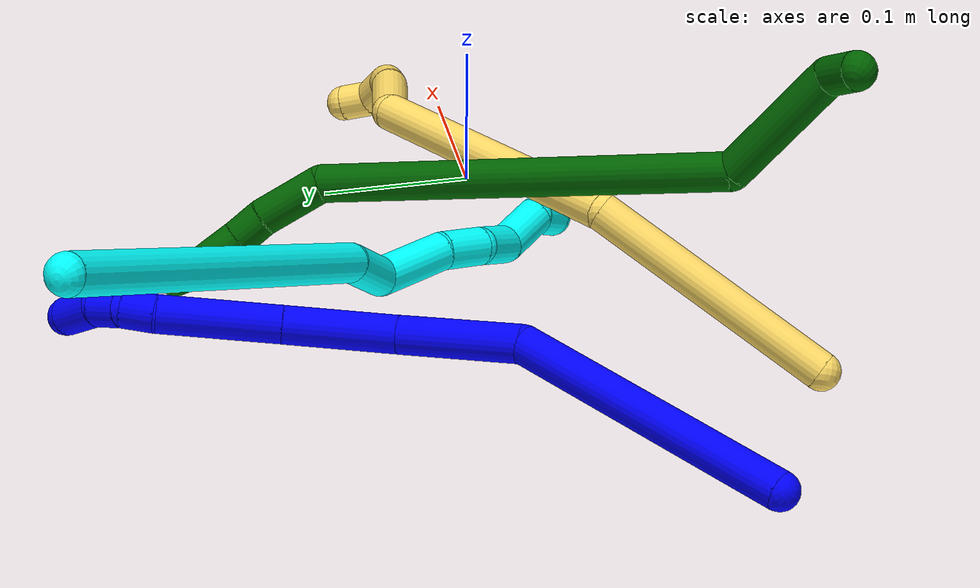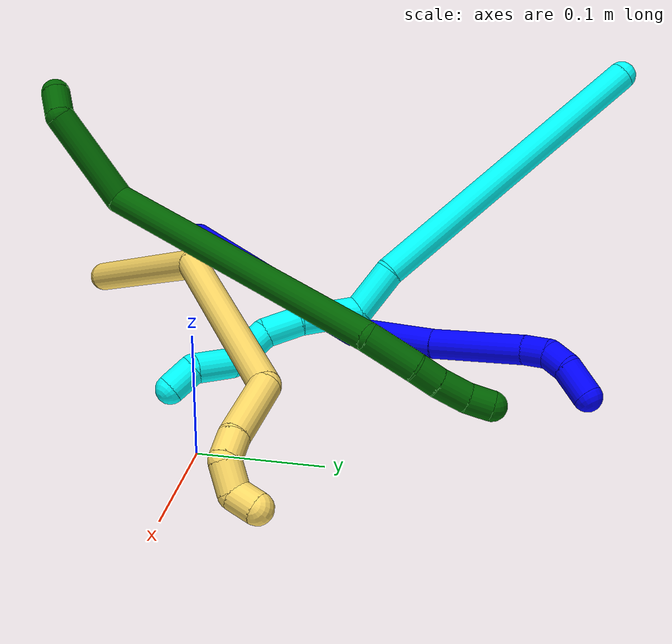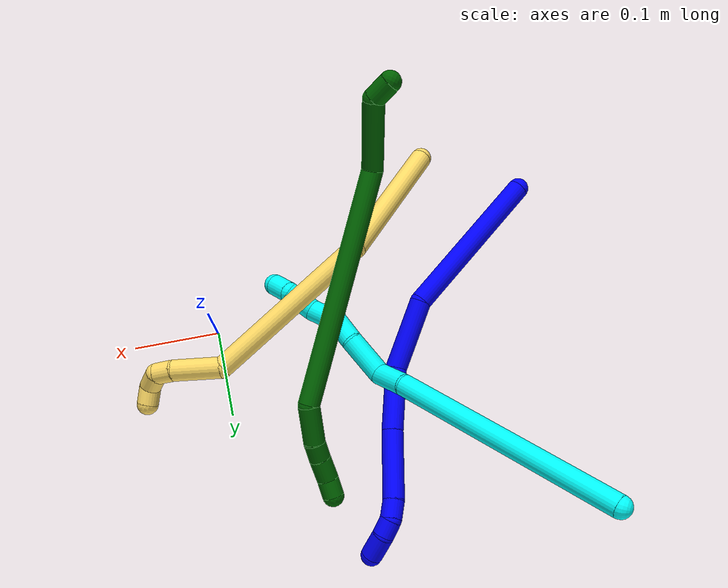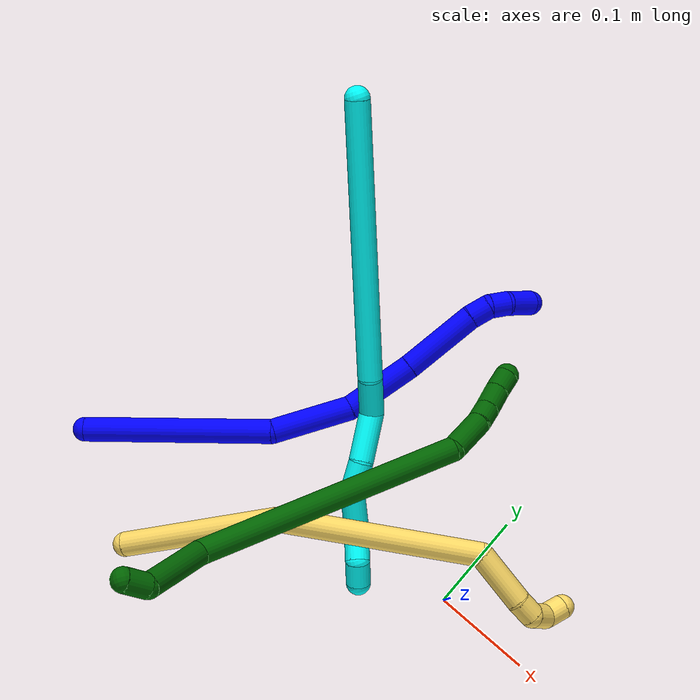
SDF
<sdf version="1.7">
 <world name="default">
  <model name="1">
   <static>0</static>
   <link name="1">
    <collision name="collision-cylinder-e_1_1_4">
     <pose>0.008089 0.071537 0.062962 -0.849069 0.084673 -0.038292</pose>
     <geometry><cylinder><radius>0.0125</radius><length>0.191282</length></cylinder></geometry>
     <surface>
      <friction><ode><mu>1.16</mu><mu2>1.16</mu2><slip1>0</slip1><slip2>0</slip2></ode></friction>
      <contact><ode><kp>1e+06</kp><kd>1</kd><max_vel>0</max_vel><min_depth>0.001</min_depth></ode></contact>
     </surface>
    </collision>
    <visual name="visual-cylinder-e_1_1_4">
     <pose>0.008089 0.071537 0.062962 -0.849069 0.084673 -0.038292</pose>
     <geometry><cylinder><radius>0.0125</radius><length>0.191282</length></cylinder></geometry>
     <material><ambient>0 0 1 1</ambient></material>
    </visual>
    <collision name="collision-cylinder-e_2_4_5">
     <pose>0.030526 0.162402 0.160155 -0.513984 0.349993 -0.092863</pose>
     <geometry><cylinder><radius>0.0125</radius><length>0.083695</length></cylinder></geometry>
     <surface>
      <friction><ode><mu>1.16</mu><mu2>1.16</mu2><slip1>0</slip1><slip2>0</slip2></ode></friction>
      <contact><ode><kp>1e+06</kp><kd>1</kd><max_vel>0</max_vel><min_depth>0.001</min_depth></ode></contact>
     </surface>
    </collision>
    <visual name="visual-cylinder-e_2_4_5">
     <pose>0.030526 0.162402 0.160155 -0.513984 0.349993 -0.092863</pose>
     <geometry><cylinder><radius>0.0125</radius><length>0.083695</length></cylinder></geometry>
     <material><ambient>0 0 1 1</ambient></material>
    </visual>
    <collision name="collision-cylinder-e_3_5_6">
     <pose>0.068295 0.199394 0.21668 -0.67009 0.68881 -0.248492</pose>
     <geometry><cylinder><radius>0.0125</radius><length>0.07369</length></cylinder></geometry>
     <surface>
      <friction><ode><mu>1.16</mu><mu2>1.16</mu2><slip1>0</slip1><slip2>0</slip2></ode></friction>
      <contact><ode><kp>1e+06</kp><kd>1</kd><max_vel>0</max_vel><min_depth>0.001</min_depth></ode></contact>
     </surface>
    </collision>
    <visual name="visual-cylinder-e_3_5_6">
     <pose>0.068295 0.199394 0.21668 -0.67009 0.68881 -0.248492</pose>
     <geometry><cylinder><radius>0.0125</radius><length>0.07369</length></cylinder></geometry>
     <material><ambient>0 0 1 1</ambient></material>
    </visual>
    <collision name="collision-cylinder-e_4_6_7">
     <pose>0.119433 0.235819 0.26062 -0.714079 0.768999 -0.299621</pose>
     <geometry><cylinder><radius>0.0125</radius><length>0.079719</length></cylinder></geometry>
     <surface>
      <friction><ode><mu>1.16</mu><mu2>1.16</mu2><slip1>0</slip1><slip2>0</slip2></ode></friction>
      <contact><ode><kp>1e+06</kp><kd>1</kd><max_vel>0</max_vel><min_depth>0.001</min_depth></ode></contact>
     </surface>
    </collision>
    <visual name="visual-cylinder-e_4_6_7">
     <pose>0.119433 0.235819 0.26062 -0.714079 0.768999 -0.299621</pose>
     <geometry><cylinder><radius>0.0125</radius><length>0.079719</length></cylinder></geometry>
     <material><ambient>0 0 1 1</ambient></material>
    </visual>
    <collision name="collision-cylinder-e_5_7_8">
     <pose>0.1534 0.260559 0.288981 -0.727609 0.60721 -0.23745</pose>
     <geometry><cylinder><radius>0.0125</radius><length>0.0219</length></cylinder></geometry>
     <surface>
      <friction><ode><mu>1.16</mu><mu2>1.16</mu2><slip1>0</slip1><slip2>0</slip2></ode></friction>
      <contact><ode><kp>1e+06</kp><kd>1</kd><max_vel>0</max_vel><min_depth>0.001</min_depth></ode></contact>
     </surface>
    </collision>
    <visual name="visual-cylinder-e_5_7_8">
     <pose>0.1534 0.260559 0.288981 -0.727609 0.60721 -0.23745</pose>
     <geometry><cylinder><radius>0.0125</radius><length>0.0219</length></cylinder></geometry>
     <material><ambient>0 0 1 1</ambient></material>
    </visual>
    <collision name="collision-cylinder-e_6_8_9">
     <pose>0.161916 0.270766 0.3046 -0.443152 0.226223 -0.05117</pose>
     <geometry><cylinder><radius>0.0125</radius><length>0.020228</length></cylinder></geometry>
     <surface>
      <friction><ode><mu>1.16</mu><mu2>1.16</mu2><slip1>0</slip1><slip2>0</slip2></ode></friction>
      <contact><ode><kp>1e+06</kp><kd>1</kd><max_vel>0</max_vel><min_depth>0.001</min_depth></ode></contact>
     </surface>
    </collision>
    <visual name="visual-cylinder-e_6_8_9">
     <pose>0.161916 0.270766 0.3046 -0.443152 0.226223 -0.05117</pose>
     <geometry><cylinder><radius>0.0125</radius><length>0.020228</length></cylinder></geometry>
     <material><ambient>0 0 1 1</ambient></material>
    </visual>
    <collision name="collision-cylinder-e_7_9_2">
     <pose>0.165082 0.277436 0.328016 -0.166894 0.060954 -0.0051</pose>
     <geometry><cylinder><radius>0.0125</radius><length>0.029487</length></cylinder></geometry>
     <surface>
      <friction><ode><mu>1.16</mu><mu2>1.16</mu2><slip1>0</slip1><slip2>0</slip2></ode></friction>
      <contact><ode><kp>1e+06</kp><kd>1</kd><max_vel>0</max_vel><min_depth>0.001</min_depth></ode></contact>
     </surface>
    </collision>
    <visual name="visual-cylinder-e_7_9_2">
     <pose>0.165082 0.277436 0.328016 -0.166894 0.060954 -0.0051</pose>
     <geometry><cylinder><radius>0.0125</radius><length>0.029487</length></cylinder></geometry>
     <material><ambient>0 0 1 1</ambient></material>
    </visual>
    <collision name="collision-sphere-2">
     <pose>0.165981 0.279881 0.342527 0 -0 0</pose>
     <geometry><sphere><radius>0.0125</radius></sphere></geometry>
     <surface>
      <friction><ode><mu>1.16</mu><mu2>1.16</mu2><slip1>0</slip1><slip2>0</slip2></ode></friction>
      <contact><ode><kp>1e+06</kp><kd>1</kd><max_vel>0</max_vel><min_depth>0.001</min_depth></ode></contact>
     </surface>
    </collision>
    <visual name="visual-sphere-2">
     <pose>0.165981 0.279881 0.342527 0 -0 0</pose>
     <geometry><sphere><radius>0.0125</radius></sphere></geometry>
     <material><ambient>0 0 1 1</ambient></material>
    </visual>
    <collision name="collision-sphere-9">
     <pose>0.164184 0.274992 0.313504 0 -0 0</pose>
     <geometry><sphere><radius>0.0125</radius></sphere></geometry>
     <surface>
      <friction><ode><mu>1.16</mu><mu2>1.16</mu2><slip1>0</slip1><slip2>0</slip2></ode></friction>
      <contact><ode><kp>1e+06</kp><kd>1</kd><max_vel>0</max_vel><min_depth>0.001</min_depth></ode></contact>
     </surface>
    </collision>
    <visual name="visual-sphere-9">
     <pose>0.164184 0.274992 0.313504 0 -0 0</pose>
     <geometry><sphere><radius>0.0125</radius></sphere></geometry>
     <material><ambient>0 0 1 1</ambient></material>
    </visual>
    <collision name="collision-sphere-4">
     <pose>0.016177 0.143074 0.125924 0 -0 0</pose>
     <geometry><sphere><radius>0.0125</radius></sphere></geometry>
     <surface>
      <friction><ode><mu>1.16</mu><mu2>1.16</mu2><slip1>0</slip1><slip2>0</slip2></ode></friction>
      <contact><ode><kp>1e+06</kp><kd>1</kd><max_vel>0</max_vel><min_depth>0.001</min_depth></ode></contact>
     </surface>
    </collision>
    <visual name="visual-sphere-4">
     <pose>0.016177 0.143074 0.125924 0 -0 0</pose>
     <geometry><sphere><radius>0.0125</radius></sphere></geometry>
     <material><ambient>0 0 1 1</ambient></material>
    </visual>
    <collision name="collision-sphere-1">
     <geometry><sphere><radius>0.0125</radius></sphere></geometry>
     <surface>
      <friction><ode><mu>1.16</mu><mu2>1.16</mu2><slip1>0</slip1><slip2>0</slip2></ode></friction>
      <contact><ode><kp>1e+06</kp><kd>1</kd><max_vel>0</max_vel><min_depth>0.001</min_depth></ode></contact>
     </surface>
    </collision>
    <visual name="visual-sphere-1">
     <geometry><sphere><radius>0.0125</radius></sphere></geometry>
     <material><ambient>0 0 1 1</ambient></material>
    </visual>
    <collision name="collision-sphere-8">
     <pose>0.159647 0.266539 0.295696 0 -0 0</pose>
     <geometry><sphere><radius>0.0125</radius></sphere></geometry>
     <surface>
      <friction><ode><mu>1.16</mu><mu2>1.16</mu2><slip1>0</slip1><slip2>0</slip2></ode></friction>
      <contact><ode><kp>1e+06</kp><kd>1</kd><max_vel>0</max_vel><min_depth>0.001</min_depth></ode></contact>
     </surface>
    </collision>
    <visual name="visual-sphere-8">
     <pose>0.159647 0.266539 0.295696 0 -0 0</pose>
     <geometry><sphere><radius>0.0125</radius></sphere></geometry>
     <material><ambient>0 0 1 1</ambient></material>
    </visual>
    <collision name="collision-sphere-5">
     <pose>0.044876 0.181729 0.194387 0 -0 0</pose>
     <geometry><sphere><radius>0.0125</radius></sphere></geometry>
     <surface>
      <friction><ode><mu>1.16</mu><mu2>1.16</mu2><slip1>0</slip1><slip2>0</slip2></ode></friction>
      <contact><ode><kp>1e+06</kp><kd>1</kd><max_vel>0</max_vel><min_depth>0.001</min_depth></ode></contact>
     </surface>
    </collision>
    <visual name="visual-sphere-5">
     <pose>0.044876 0.181729 0.194387 0 -0 0</pose>
     <geometry><sphere><radius>0.0125</radius></sphere></geometry>
     <material><ambient>0 0 1 1</ambient></material>
    </visual>
    <collision name="collision-sphere-6">
     <pose>0.091714 0.21706 0.238974 0 -0 0</pose>
     <geometry><sphere><radius>0.0125</radius></sphere></geometry>
     <surface>
      <friction><ode><mu>1.16</mu><mu2>1.16</mu2><slip1>0</slip1><slip2>0</slip2></ode></friction>
      <contact><ode><kp>1e+06</kp><kd>1</kd><max_vel>0</max_vel><min_depth>0.001</min_depth></ode></contact>
     </surface>
    </collision>
    <visual name="visual-sphere-6">
     <pose>0.091714 0.21706 0.238974 0 -0 0</pose>
     <geometry><sphere><radius>0.0125</radius></sphere></geometry>
     <material><ambient>0 0 1 1</ambient></material>
    </visual>
    <collision name="collision-sphere-7">
     <pose>0.147152 0.254578 0.282265 0 -0 0</pose>
     <geometry><sphere><radius>0.0125</radius></sphere></geometry>
     <surface>
      <friction><ode><mu>1.16</mu><mu2>1.16</mu2><slip1>0</slip1><slip2>0</slip2></ode></friction>
      <contact><ode><kp>1e+06</kp><kd>1</kd><max_vel>0</max_vel><min_depth>0.001</min_depth></ode></contact>
     </surface>
    </collision>
    <visual name="visual-sphere-7">
     <pose>0.147152 0.254578 0.282265 0 -0 0</pose>
     <geometry><sphere><radius>0.0125</radius></sphere></geometry>
     <material><ambient>0 0 1 1</ambient></material>
    </visual>
    <inertial>
     <pose>0.060316 0.160265 0.168706 0 -0 0</pose>
     <mass>0.5</mass>
     <inertia>
      <ixx>0.00067</ixx>
      <ixy>0</ixy>
      <ixz>0</ixz>
      <iyy>0.000491</iyy>
      <iyz>0</iyz>
      <izz>-0.000604</izz>
     </inertia>
    </inertial>
   </link>
   <pose>-0.388241 -0.106648 0.012294 2.34089 -0.220796 2.19236</pose>
  </model>
  <model name="3">
   <static>0</static>
   <link name="3">
    <collision name="collision-cylinder-e_1_1_4">
     <pose>0.014073 -0.039694 -0.132523 2.85057 0.101377 0.666541</pose>
     <geometry><cylinder><radius>0.0125</radius><length>0.278109</length></cylinder></geometry>
     <surface>
      <friction><ode><mu>1.16</mu><mu2>1.16</mu2><slip1>0</slip1><slip2>0</slip2></ode></friction>
      <contact><ode><kp>1e+06</kp><kd>1</kd><max_vel>0</max_vel><min_depth>0.001</min_depth></ode></contact>
     </surface>
    </collision>
    <visual name="visual-cylinder-e_1_1_4">
     <pose>0.014073 -0.039694 -0.132523 2.85057 0.101377 0.666541</pose>
     <geometry><cylinder><radius>0.0125</radius><length>0.278109</length></cylinder></geometry>
     <material><ambient>0.003922 1 0.996078 1</ambient></material>
    </visual>
    <collision name="collision-cylinder-e_2_4_5">
     <pose>0.026591 -0.088929 -0.283732 2.66953 -0.073979 -0.305332</pose>
     <geometry><cylinder><radius>0.0125</radius><length>0.042075</length></cylinder></geometry>
     <surface>
      <friction><ode><mu>1.16</mu><mu2>1.16</mu2><slip1>0</slip1><slip2>0</slip2></ode></friction>
      <contact><ode><kp>1e+06</kp><kd>1</kd><max_vel>0</max_vel><min_depth>0.001</min_depth></ode></contact>
     </surface>
    </collision>
    <visual name="visual-cylinder-e_2_4_5">
     <pose>0.026591 -0.088929 -0.283732 2.66953 -0.073979 -0.305332</pose>
     <geometry><cylinder><radius>0.0125</radius><length>0.042075</length></cylinder></geometry>
     <material><ambient>0.003922 1 0.996078 1</ambient></material>
    </visual>
    <collision name="collision-cylinder-e_3_5_6">
     <pose>0.039251 -0.101252 -0.32297 3.00697 0.600848 2.71308</pose>
     <geometry><cylinder><radius>0.0125</radius><length>0.050287</length></cylinder></geometry>
     <surface>
      <friction><ode><mu>1.16</mu><mu2>1.16</mu2><slip1>0</slip1><slip2>0</slip2></ode></friction>
      <contact><ode><kp>1e+06</kp><kd>1</kd><max_vel>0</max_vel><min_depth>0.001</min_depth></ode></contact>
     </surface>
    </collision>
    <visual name="visual-cylinder-e_3_5_6">
     <pose>0.039251 -0.101252 -0.32297 3.00697 0.600848 2.71308</pose>
     <geometry><cylinder><radius>0.0125</radius><length>0.050287</length></cylinder></geometry>
     <material><ambient>0.003922 1 0.996078 1</ambient></material>
    </visual>
    <collision name="collision-cylinder-e_4_6_7">
     <pose>0.060805 -0.109079 -0.356427 2.76909 0.487167 1.8441</pose>
     <geometry><cylinder><radius>0.0125</radius><length>0.031359</length></cylinder></geometry>
     <surface>
      <friction><ode><mu>1.16</mu><mu2>1.16</mu2><slip1>0</slip1><slip2>0</slip2></ode></friction>
      <contact><ode><kp>1e+06</kp><kd>1</kd><max_vel>0</max_vel><min_depth>0.001</min_depth></ode></contact>
     </surface>
    </collision>
    <visual name="visual-cylinder-e_4_6_7">
     <pose>0.060805 -0.109079 -0.356427 2.76909 0.487167 1.8441</pose>
     <geometry><cylinder><radius>0.0125</radius><length>0.031359</length></cylinder></geometry>
     <material><ambient>0.003922 1 0.996078 1</ambient></material>
    </visual>
    <collision name="collision-cylinder-e_5_7_8">
     <pose>0.069212 -0.11887 -0.387629 2.88764 0.056347 0.434516</pose>
     <geometry><cylinder><radius>0.0125</radius><length>0.037866</length></cylinder></geometry>
     <surface>
      <friction><ode><mu>1.16</mu><mu2>1.16</mu2><slip1>0</slip1><slip2>0</slip2></ode></friction>
      <contact><ode><kp>1e+06</kp><kd>1</kd><max_vel>0</max_vel><min_depth>0.001</min_depth></ode></contact>
     </surface>
    </collision>
    <visual name="visual-cylinder-e_5_7_8">
     <pose>0.069212 -0.11887 -0.387629 2.88764 0.056347 0.434516</pose>
     <geometry><cylinder><radius>0.0125</radius><length>0.037866</length></cylinder></geometry>
     <material><ambient>0.003922 1 0.996078 1</ambient></material>
    </visual>
    <collision name="collision-cylinder-e_6_8_9">
     <pose>0.078829 -0.120765 -0.421247 -2.95741 0.501851 -2.44997</pose>
     <geometry><cylinder><radius>0.0125</radius><length>0.035553</length></cylinder></geometry>
     <surface>
      <friction><ode><mu>1.16</mu><mu2>1.16</mu2><slip1>0</slip1><slip2>0</slip2></ode></friction>
      <contact><ode><kp>1e+06</kp><kd>1</kd><max_vel>0</max_vel><min_depth>0.001</min_depth></ode></contact>
     </surface>
    </collision>
    <visual name="visual-cylinder-e_6_8_9">
     <pose>0.078829 -0.120765 -0.421247 -2.95741 0.501851 -2.44997</pose>
     <geometry><cylinder><radius>0.0125</radius><length>0.035553</length></cylinder></geometry>
     <material><ambient>0.003922 1 0.996078 1</ambient></material>
    </visual>
    <collision name="collision-cylinder-e_7_9_2">
     <pose>0.088291 -0.121989 -0.448217 2.80483 0.073635 0.426766</pose>
     <geometry><cylinder><radius>0.0125</radius><length>0.02475</length></cylinder></geometry>
     <surface>
      <friction><ode><mu>1.16</mu><mu2>1.16</mu2><slip1>0</slip1><slip2>0</slip2></ode></friction>
      <contact><ode><kp>1e+06</kp><kd>1</kd><max_vel>0</max_vel><min_depth>0.001</min_depth></ode></contact>
     </surface>
    </collision>
    <visual name="visual-cylinder-e_7_9_2">
     <pose>0.088291 -0.121989 -0.448217 2.80483 0.073635 0.426766</pose>
     <geometry><cylinder><radius>0.0125</radius><length>0.02475</length></cylinder></geometry>
     <material><ambient>0.003922 1 0.996078 1</ambient></material>
    </visual>
    <collision name="collision-sphere-2">
     <pose>0.089202 -0.126067 -0.459865 0 -0 0</pose>
     <geometry><sphere><radius>0.0125</radius></sphere></geometry>
     <surface>
      <friction><ode><mu>1.16</mu><mu2>1.16</mu2><slip1>0</slip1><slip2>0</slip2></ode></friction>
      <contact><ode><kp>1e+06</kp><kd>1</kd><max_vel>0</max_vel><min_depth>0.001</min_depth></ode></contact>
     </surface>
    </collision>
    <visual name="visual-sphere-2">
     <pose>0.089202 -0.126067 -0.459865 0 -0 0</pose>
     <geometry><sphere><radius>0.0125</radius></sphere></geometry>
     <material><ambient>0.003922 1 0.996078 1</ambient></material>
    </visual>
    <collision name="collision-sphere-9">
     <pose>0.087381 -0.117911 -0.436568 0 -0 0</pose>
     <geometry><sphere><radius>0.0125</radius></sphere></geometry>
     <surface>
      <friction><ode><mu>1.16</mu><mu2>1.16</mu2><slip1>0</slip1><slip2>0</slip2></ode></friction>
      <contact><ode><kp>1e+06</kp><kd>1</kd><max_vel>0</max_vel><min_depth>0.001</min_depth></ode></contact>
     </surface>
    </collision>
    <visual name="visual-sphere-9">
     <pose>0.087381 -0.117911 -0.436568 0 -0 0</pose>
     <geometry><sphere><radius>0.0125</radius></sphere></geometry>
     <material><ambient>0.003922 1 0.996078 1</ambient></material>
    </visual>
    <collision name="collision-sphere-4">
     <pose>0.028146 -0.079389 -0.265047 0 -0 0</pose>
     <geometry><sphere><radius>0.0125</radius></sphere></geometry>
     <surface>
      <friction><ode><mu>1.16</mu><mu2>1.16</mu2><slip1>0</slip1><slip2>0</slip2></ode></friction>
      <contact><ode><kp>1e+06</kp><kd>1</kd><max_vel>0</max_vel><min_depth>0.001</min_depth></ode></contact>
     </surface>
    </collision>
    <visual name="visual-sphere-4">
     <pose>0.028146 -0.079389 -0.265047 0 -0 0</pose>
     <geometry><sphere><radius>0.0125</radius></sphere></geometry>
     <material><ambient>0.003922 1 0.996078 1</ambient></material>
    </visual>
    <collision name="collision-sphere-1">
     <geometry><sphere><radius>0.0125</radius></sphere></geometry>
     <surface>
      <friction><ode><mu>1.16</mu><mu2>1.16</mu2><slip1>0</slip1><slip2>0</slip2></ode></friction>
      <contact><ode><kp>1e+06</kp><kd>1</kd><max_vel>0</max_vel><min_depth>0.001</min_depth></ode></contact>
     </surface>
    </collision>
    <visual name="visual-sphere-1">
     <geometry><sphere><radius>0.0125</radius></sphere></geometry>
     <material><ambient>0.003922 1 0.996078 1</ambient></material>
    </visual>
    <collision name="collision-sphere-8">
     <pose>0.070278 -0.123619 -0.405926 0 -0 0</pose>
     <geometry><sphere><radius>0.0125</radius></sphere></geometry>
     <surface>
      <friction><ode><mu>1.16</mu><mu2>1.16</mu2><slip1>0</slip1><slip2>0</slip2></ode></friction>
      <contact><ode><kp>1e+06</kp><kd>1</kd><max_vel>0</max_vel><min_depth>0.001</min_depth></ode></contact>
     </surface>
    </collision>
    <visual name="visual-sphere-8">
     <pose>0.070278 -0.123619 -0.405926 0 -0 0</pose>
     <geometry><sphere><radius>0.0125</radius></sphere></geometry>
     <material><ambient>0.003922 1 0.996078 1</ambient></material>
    </visual>
    <collision name="collision-sphere-5">
     <pose>0.025036 -0.098469 -0.302417 0 -0 0</pose>
     <geometry><sphere><radius>0.0125</radius></sphere></geometry>
     <surface>
      <friction><ode><mu>1.16</mu><mu2>1.16</mu2><slip1>0</slip1><slip2>0</slip2></ode></friction>
      <contact><ode><kp>1e+06</kp><kd>1</kd><max_vel>0</max_vel><min_depth>0.001</min_depth></ode></contact>
     </surface>
    </collision>
    <visual name="visual-sphere-5">
     <pose>0.025036 -0.098469 -0.302417 0 -0 0</pose>
     <geometry><sphere><radius>0.0125</radius></sphere></geometry>
     <material><ambient>0.003922 1 0.996078 1</ambient></material>
    </visual>
    <collision name="collision-sphere-6">
     <pose>0.053465 -0.104036 -0.343522 0 -0 0</pose>
     <geometry><sphere><radius>0.0125</radius></sphere></geometry>
     <surface>
      <friction><ode><mu>1.16</mu><mu2>1.16</mu2><slip1>0</slip1><slip2>0</slip2></ode></friction>
      <contact><ode><kp>1e+06</kp><kd>1</kd><max_vel>0</max_vel><min_depth>0.001</min_depth></ode></contact>
     </surface>
    </collision>
    <visual name="visual-sphere-6">
     <pose>0.053465 -0.104036 -0.343522 0 -0 0</pose>
     <geometry><sphere><radius>0.0125</radius></sphere></geometry>
     <material><ambient>0.003922 1 0.996078 1</ambient></material>
    </visual>
    <collision name="collision-sphere-7">
     <pose>0.068145 -0.114121 -0.369333 0 -0 0</pose>
     <geometry><sphere><radius>0.0125</radius></sphere></geometry>
     <surface>
      <friction><ode><mu>1.16</mu><mu2>1.16</mu2><slip1>0</slip1><slip2>0</slip2></ode></friction>
      <contact><ode><kp>1e+06</kp><kd>1</kd><max_vel>0</max_vel><min_depth>0.001</min_depth></ode></contact>
     </surface>
    </collision>
    <visual name="visual-sphere-7">
     <pose>0.068145 -0.114121 -0.369333 0 -0 0</pose>
     <geometry><sphere><radius>0.0125</radius></sphere></geometry>
     <material><ambient>0.003922 1 0.996078 1</ambient></material>
    </visual>
    <inertial>
     <pose>0.033044 -0.070215 -0.233921 0 -0 0</pose>
     <mass>0.5</mass>
     <inertia>
      <ixx>0.002533</ixx>
      <ixy>0</ixy>
      <ixz>0</ixz>
      <iyy>-0.000217</iyy>
      <iyz>0</iyz>
      <izz>0.000293</izz>
     </inertia>
    </inertial>
   </link>
   <pose>-0.36915 0.290698 0.206758 1.1845 -0.573322 -1.87226</pose>
  </model>
  <model name="5">
   <static>0</static>
   <link name="5">
    <collision name="collision-cylinder-e_1_1_4">
     <pose>0.032838 0.065276 0.043895 -0.978795 0.395464 -0.212614</pose>
     <geometry><cylinder><radius>0.0125</radius><length>0.170482</length></cylinder></geometry>
     <surface>
      <friction><ode><mu>1.16</mu><mu2>1.16</mu2><slip1>0</slip1><slip2>0</slip2></ode></friction>
      <contact><ode><kp>1e+06</kp><kd>1</kd><max_vel>0</max_vel><min_depth>0.001</min_depth></ode></contact>
     </surface>
    </collision>
    <visual name="visual-cylinder-e_1_1_4">
     <pose>0.032838 0.065276 0.043895 -0.978795 0.395464 -0.212614</pose>
     <geometry><cylinder><radius>0.0125</radius><length>0.170482</length></cylinder></geometry>
     <material><ambient>1 0.858824 0.4 1</ambient></material>
    </visual>
    <collision name="collision-cylinder-e_2_4_5">
     <pose>0.148132 0.173809 0.128266 -0.818616 0.94779 -0.437848</pose>
     <geometry><cylinder><radius>0.0125</radius><length>0.203061</length></cylinder></geometry>
     <surface>
      <friction><ode><mu>1.16</mu><mu2>1.16</mu2><slip1>0</slip1><slip2>0</slip2></ode></friction>
      <contact><ode><kp>1e+06</kp><kd>1</kd><max_vel>0</max_vel><min_depth>0.001</min_depth></ode></contact>
     </surface>
    </collision>
    <visual name="visual-cylinder-e_2_4_5">
     <pose>0.148132 0.173809 0.128266 -0.818616 0.94779 -0.437848</pose>
     <geometry><cylinder><radius>0.0125</radius><length>0.203061</length></cylinder></geometry>
     <material><ambient>1 0.858824 0.4 1</ambient></material>
    </visual>
    <collision name="collision-cylinder-e_3_5_6">
     <pose>0.254144 0.209272 0.184829 0.451224 0.921632 0.226918</pose>
     <geometry><cylinder><radius>0.0125</radius><length>0.059144</length></cylinder></geometry>
     <surface>
      <friction><ode><mu>1.16</mu><mu2>1.16</mu2><slip1>0</slip1><slip2>0</slip2></ode></friction>
      <contact><ode><kp>1e+06</kp><kd>1</kd><max_vel>0</max_vel><min_depth>0.001</min_depth></ode></contact>
     </surface>
    </collision>
    <visual name="visual-cylinder-e_3_5_6">
     <pose>0.254144 0.209272 0.184829 0.451224 0.921632 0.226918</pose>
     <geometry><cylinder><radius>0.0125</radius><length>0.059144</length></cylinder></geometry>
     <material><ambient>1 0.858824 0.4 1</ambient></material>
    </visual>
    <collision name="collision-cylinder-e_4_6_7">
     <pose>0.28762 0.198866 0.205174 0.550018 1.10441 0.344261</pose>
     <geometry><cylinder><radius>0.0125</radius><length>0.022211</length></cylinder></geometry>
     <surface>
      <friction><ode><mu>1.16</mu><mu2>1.16</mu2><slip1>0</slip1><slip2>0</slip2></ode></friction>
      <contact><ode><kp>1e+06</kp><kd>1</kd><max_vel>0</max_vel><min_depth>0.001</min_depth></ode></contact>
     </surface>
    </collision>
    <visual name="visual-cylinder-e_4_6_7">
     <pose>0.28762 0.198866 0.205174 0.550018 1.10441 0.344261</pose>
     <geometry><cylinder><radius>0.0125</radius><length>0.022211</length></cylinder></geometry>
     <material><ambient>1 0.858824 0.4 1</ambient></material>
    </visual>
    <collision name="collision-cylinder-e_5_7_8">
     <pose>0.309195 0.197018 0.20578 -2.93589 1.2611 -2.86066</pose>
     <geometry><cylinder><radius>0.0125</radius><length>0.024475</length></cylinder></geometry>
     <surface>
      <friction><ode><mu>1.16</mu><mu2>1.16</mu2><slip1>0</slip1><slip2>0</slip2></ode></friction>
      <contact><ode><kp>1e+06</kp><kd>1</kd><max_vel>0</max_vel><min_depth>0.001</min_depth></ode></contact>
     </surface>
    </collision>
    <visual name="visual-cylinder-e_5_7_8">
     <pose>0.309195 0.197018 0.20578 -2.93589 1.2611 -2.86066</pose>
     <geometry><cylinder><radius>0.0125</radius><length>0.024475</length></cylinder></geometry>
     <material><ambient>1 0.858824 0.4 1</ambient></material>
    </visual>
    <collision name="collision-cylinder-e_6_8_2">
     <pose>0.327746 0.205188 0.200146 -1.83227 0.732247 -0.926494</pose>
     <geometry><cylinder><radius>0.0125</radius><length>0.020627</length></cylinder></geometry>
     <surface>
      <friction><ode><mu>1.16</mu><mu2>1.16</mu2><slip1>0</slip1><slip2>0</slip2></ode></friction>
      <contact><ode><kp>1e+06</kp><kd>1</kd><max_vel>0</max_vel><min_depth>0.001</min_depth></ode></contact>
     </surface>
    </collision>
    <visual name="visual-cylinder-e_6_8_2">
     <pose>0.327746 0.205188 0.200146 -1.83227 0.732247 -0.926494</pose>
     <geometry><cylinder><radius>0.0125</radius><length>0.020627</length></cylinder></geometry>
     <material><ambient>1 0.858824 0.4 1</ambient></material>
    </visual>
    <collision name="collision-sphere-2">
     <pose>0.33464 0.212597 0.198164 0 -0 0</pose>
     <geometry><sphere><radius>0.0125</radius></sphere></geometry>
     <surface>
      <friction><ode><mu>1.16</mu><mu2>1.16</mu2><slip1>0</slip1><slip2>0</slip2></ode></friction>
      <contact><ode><kp>1e+06</kp><kd>1</kd><max_vel>0</max_vel><min_depth>0.001</min_depth></ode></contact>
     </surface>
    </collision>
    <visual name="visual-sphere-2">
     <pose>0.33464 0.212597 0.198164 0 -0 0</pose>
     <geometry><sphere><radius>0.0125</radius></sphere></geometry>
     <material><ambient>1 0.858824 0.4 1</ambient></material>
    </visual>
    <collision name="collision-sphere-4">
     <pose>0.065676 0.130552 0.087791 0 -0 0</pose>
     <geometry><sphere><radius>0.0125</radius></sphere></geometry>
     <surface>
      <friction><ode><mu>1.16</mu><mu2>1.16</mu2><slip1>0</slip1><slip2>0</slip2></ode></friction>
      <contact><ode><kp>1e+06</kp><kd>1</kd><max_vel>0</max_vel><min_depth>0.001</min_depth></ode></contact>
     </surface>
    </collision>
    <visual name="visual-sphere-4">
     <pose>0.065676 0.130552 0.087791 0 -0 0</pose>
     <geometry><sphere><radius>0.0125</radius></sphere></geometry>
     <material><ambient>1 0.858824 0.4 1</ambient></material>
    </visual>
    <collision name="collision-sphere-1">
     <geometry><sphere><radius>0.0125</radius></sphere></geometry>
     <surface>
      <friction><ode><mu>1.16</mu><mu2>1.16</mu2><slip1>0</slip1><slip2>0</slip2></ode></friction>
      <contact><ode><kp>1e+06</kp><kd>1</kd><max_vel>0</max_vel><min_depth>0.001</min_depth></ode></contact>
     </surface>
    </collision>
    <visual name="visual-sphere-1">
     <geometry><sphere><radius>0.0125</radius></sphere></geometry>
     <material><ambient>1 0.858824 0.4 1</ambient></material>
    </visual>
    <collision name="collision-sphere-8">
     <pose>0.320851 0.197779 0.202129 0 -0 0</pose>
     <geometry><sphere><radius>0.0125</radius></sphere></geometry>
     <surface>
      <friction><ode><mu>1.16</mu><mu2>1.16</mu2><slip1>0</slip1><slip2>0</slip2></ode></friction>
      <contact><ode><kp>1e+06</kp><kd>1</kd><max_vel>0</max_vel><min_depth>0.001</min_depth></ode></contact>
     </surface>
    </collision>
    <visual name="visual-sphere-8">
     <pose>0.320851 0.197779 0.202129 0 -0 0</pose>
     <geometry><sphere><radius>0.0125</radius></sphere></geometry>
     <material><ambient>1 0.858824 0.4 1</ambient></material>
    </visual>
    <collision name="collision-sphere-5">
     <pose>0.230588 0.217067 0.168741 0 -0 0</pose>
     <geometry><sphere><radius>0.0125</radius></sphere></geometry>
     <surface>
      <friction><ode><mu>1.16</mu><mu2>1.16</mu2><slip1>0</slip1><slip2>0</slip2></ode></friction>
      <contact><ode><kp>1e+06</kp><kd>1</kd><max_vel>0</max_vel><min_depth>0.001</min_depth></ode></contact>
     </surface>
    </collision>
    <visual name="visual-sphere-5">
     <pose>0.230588 0.217067 0.168741 0 -0 0</pose>
     <geometry><sphere><radius>0.0125</radius></sphere></geometry>
     <material><ambient>1 0.858824 0.4 1</ambient></material>
    </visual>
    <collision name="collision-sphere-6">
     <pose>0.277701 0.201476 0.200916 0 -0 0</pose>
     <geometry><sphere><radius>0.0125</radius></sphere></geometry>
     <surface>
      <friction><ode><mu>1.16</mu><mu2>1.16</mu2><slip1>0</slip1><slip2>0</slip2></ode></friction>
      <contact><ode><kp>1e+06</kp><kd>1</kd><max_vel>0</max_vel><min_depth>0.001</min_depth></ode></contact>
     </surface>
    </collision>
    <visual name="visual-sphere-6">
     <pose>0.277701 0.201476 0.200916 0 -0 0</pose>
     <geometry><sphere><radius>0.0125</radius></sphere></geometry>
     <material><ambient>1 0.858824 0.4 1</ambient></material>
    </visual>
    <collision name="collision-sphere-7">
     <pose>0.29754 0.196256 0.209431 0 -0 0</pose>
     <geometry><sphere><radius>0.0125</radius></sphere></geometry>
     <surface>
      <friction><ode><mu>1.16</mu><mu2>1.16</mu2><slip1>0</slip1><slip2>0</slip2></ode></friction>
      <contact><ode><kp>1e+06</kp><kd>1</kd><max_vel>0</max_vel><min_depth>0.001</min_depth></ode></contact>
     </surface>
    </collision>
    <visual name="visual-sphere-7">
     <pose>0.29754 0.196256 0.209431 0 -0 0</pose>
     <geometry><sphere><radius>0.0125</radius></sphere></geometry>
     <material><ambient>1 0.858824 0.4 1</ambient></material>
    </visual>
    <inertial>
     <pose>0.142851 0.144542 0.116365 0 -0 0</pose>
     <mass>0.5</mass>
     <inertia>
      <ixx>0.000535</ixx>
      <ixy>0</ixy>
      <ixz>0</ixz>
      <iyy>0.000657</iyy>
      <iyz>0</iyz>
      <izz>-0.001357</izz>
     </inertia>
    </inertial>
   </link>
   <pose>-0.280237 -0.167501 0.011498 0.496838 0.678827 0.358236</pose>
  </model>
  <model name="6">
   <static>0</static>
   <link name="6">
    <collision name="collision-cylinder-e_1_1_4">
     <pose>-0.004399 0.011413 -0.004178 -1.92173 -0.34727 0.491834</pose>
     <geometry><cylinder><radius>0.0125</radius><length>0.02585</length></cylinder></geometry>
     <surface>
      <friction><ode><mu>1.16</mu><mu2>1.16</mu2><slip1>0</slip1><slip2>0</slip2></ode></friction>
      <contact><ode><kp>1e+06</kp><kd>1</kd><max_vel>0</max_vel><min_depth>0.001</min_depth></ode></contact>
     </surface>
    </collision>
    <visual name="visual-cylinder-e_1_1_4">
     <pose>-0.004399 0.011413 -0.004178 -1.92173 -0.34727 0.491834</pose>
     <geometry><cylinder><radius>0.0125</radius><length>0.02585</length></cylinder></geometry>
     <material><ambient>0 0.392157 0.003922 1</ambient></material>
    </visual>
    <collision name="collision-cylinder-e_2_4_5">
     <pose>-0.03127 0.05629 0.007585 -1.12624 -0.545006 0.349248</pose>
     <geometry><cylinder><radius>0.0125</radius><length>0.086696</length></cylinder></geometry>
     <surface>
      <friction><ode><mu>1.16</mu><mu2>1.16</mu2><slip1>0</slip1><slip2>0</slip2></ode></friction>
      <contact><ode><kp>1e+06</kp><kd>1</kd><max_vel>0</max_vel><min_depth>0.001</min_depth></ode></contact>
     </surface>
    </collision>
    <visual name="visual-cylinder-e_2_4_5">
     <pose>-0.03127 0.05629 0.007585 -1.12624 -0.545006 0.349248</pose>
     <geometry><cylinder><radius>0.0125</radius><length>0.086696</length></cylinder></geometry>
     <material><ambient>0 0.392157 0.003922 1</ambient></material>
    </visual>
    <collision name="collision-cylinder-e_3_5_6">
     <pose>-0.035342 0.222988 0.045138 -1.40999 0.135491 -0.115333</pose>
     <geometry><cylinder><radius>0.0125</radius><length>0.272445</length></cylinder></geometry>
     <surface>
      <friction><ode><mu>1.16</mu><mu2>1.16</mu2><slip1>0</slip1><slip2>0</slip2></ode></friction>
      <contact><ode><kp>1e+06</kp><kd>1</kd><max_vel>0</max_vel><min_depth>0.001</min_depth></ode></contact>
     </surface>
    </collision>
    <visual name="visual-cylinder-e_3_5_6">
     <pose>-0.035342 0.222988 0.045138 -1.40999 0.135491 -0.115333</pose>
     <geometry><cylinder><radius>0.0125</radius><length>0.272445</length></cylinder></geometry>
     <material><ambient>0 0.392157 0.003922 1</ambient></material>
    </visual>
    <collision name="collision-cylinder-e_4_6_7">
     <pose>-0.020772 0.37489 0.078679 -1.00219 -0.171203 0.093933</pose>
     <geometry><cylinder><radius>0.0125</radius><length>0.044969</length></cylinder></geometry>
     <surface>
      <friction><ode><mu>1.16</mu><mu2>1.16</mu2><slip1>0</slip1><slip2>0</slip2></ode></friction>
      <contact><ode><kp>1e+06</kp><kd>1</kd><max_vel>0</max_vel><min_depth>0.001</min_depth></ode></contact>
     </surface>
    </collision>
    <visual name="visual-cylinder-e_4_6_7">
     <pose>-0.020772 0.37489 0.078679 -1.00219 -0.171203 0.093933</pose>
     <geometry><cylinder><radius>0.0125</radius><length>0.044969</length></cylinder></geometry>
     <material><ambient>0 0.392157 0.003922 1</ambient></material>
    </visual>
    <collision name="collision-cylinder-e_5_7_8">
     <pose>-0.02761 0.401381 0.097457 -0.851613 -0.281628 0.128408</pose>
     <geometry><cylinder><radius>0.0125</radius><length>0.021644</length></cylinder></geometry>
     <surface>
      <friction><ode><mu>1.16</mu><mu2>1.16</mu2><slip1>0</slip1><slip2>0</slip2></ode></friction>
      <contact><ode><kp>1e+06</kp><kd>1</kd><max_vel>0</max_vel><min_depth>0.001</min_depth></ode></contact>
     </surface>
    </collision>
    <visual name="visual-cylinder-e_5_7_8">
     <pose>-0.02761 0.401381 0.097457 -0.851613 -0.281628 0.128408</pose>
     <geometry><cylinder><radius>0.0125</radius><length>0.021644</length></cylinder></geometry>
     <material><ambient>0 0.392157 0.003922 1</ambient></material>
    </visual>
    <collision name="collision-cylinder-e_6_8_9">
     <pose>-0.033208 0.418812 0.113597 -0.802277 -0.191391 0.081379</pose>
     <geometry><cylinder><radius>0.0125</radius><length>0.027233</length></cylinder></geometry>
     <surface>
      <friction><ode><mu>1.16</mu><mu2>1.16</mu2><slip1>0</slip1><slip2>0</slip2></ode></friction>
      <contact><ode><kp>1e+06</kp><kd>1</kd><max_vel>0</max_vel><min_depth>0.001</min_depth></ode></contact>
     </surface>
    </collision>
    <visual name="visual-cylinder-e_6_8_9">
     <pose>-0.033208 0.418812 0.113597 -0.802277 -0.191391 0.081379</pose>
     <geometry><cylinder><radius>0.0125</radius><length>0.027233</length></cylinder></geometry>
     <material><ambient>0 0.392157 0.003922 1</ambient></material>
    </visual>
    <collision name="collision-cylinder-e_7_9_2">
     <pose>-0.035586 0.436245 0.130013 -0.832047 0.020077 -0.008871</pose>
     <geometry><cylinder><radius>0.0125</radius><length>0.021163</length></cylinder></geometry>
     <surface>
      <friction><ode><mu>1.16</mu><mu2>1.16</mu2><slip1>0</slip1><slip2>0</slip2></ode></friction>
      <contact><ode><kp>1e+06</kp><kd>1</kd><max_vel>0</max_vel><min_depth>0.001</min_depth></ode></contact>
     </surface>
    </collision>
    <visual name="visual-cylinder-e_7_9_2">
     <pose>-0.035586 0.436245 0.130013 -0.832047 0.020077 -0.008871</pose>
     <geometry><cylinder><radius>0.0125</radius><length>0.021163</length></cylinder></geometry>
     <material><ambient>0 0.392157 0.003922 1</ambient></material>
    </visual>
    <collision name="collision-sphere-2">
     <pose>-0.035374 0.444066 0.137137 0 -0 0</pose>
     <geometry><sphere><radius>0.0125</radius></sphere></geometry>
     <surface>
      <friction><ode><mu>1.16</mu><mu2>1.16</mu2><slip1>0</slip1><slip2>0</slip2></ode></friction>
      <contact><ode><kp>1e+06</kp><kd>1</kd><max_vel>0</max_vel><min_depth>0.001</min_depth></ode></contact>
     </surface>
    </collision>
    <visual name="visual-sphere-2">
     <pose>-0.035374 0.444066 0.137137 0 -0 0</pose>
     <geometry><sphere><radius>0.0125</radius></sphere></geometry>
     <material><ambient>0 0.392157 0.003922 1</ambient></material>
    </visual>
    <collision name="collision-sphere-9">
     <pose>-0.035799 0.428423 0.122889 0 -0 0</pose>
     <geometry><sphere><radius>0.0125</radius></sphere></geometry>
     <surface>
      <friction><ode><mu>1.16</mu><mu2>1.16</mu2><slip1>0</slip1><slip2>0</slip2></ode></friction>
      <contact><ode><kp>1e+06</kp><kd>1</kd><max_vel>0</max_vel><min_depth>0.001</min_depth></ode></contact>
     </surface>
    </collision>
    <visual name="visual-sphere-9">
     <pose>-0.035799 0.428423 0.122889 0 -0 0</pose>
     <geometry><sphere><radius>0.0125</radius></sphere></geometry>
     <material><ambient>0 0.392157 0.003922 1</ambient></material>
    </visual>
    <collision name="collision-sphere-4">
     <pose>-0.008797 0.022825 -0.008356 0 -0 0</pose>
     <geometry><sphere><radius>0.0125</radius></sphere></geometry>
     <surface>
      <friction><ode><mu>1.16</mu><mu2>1.16</mu2><slip1>0</slip1><slip2>0</slip2></ode></friction>
      <contact><ode><kp>1e+06</kp><kd>1</kd><max_vel>0</max_vel><min_depth>0.001</min_depth></ode></contact>
     </surface>
    </collision>
    <visual name="visual-sphere-4">
     <pose>-0.008797 0.022825 -0.008356 0 -0 0</pose>
     <geometry><sphere><radius>0.0125</radius></sphere></geometry>
     <material><ambient>0 0.392157 0.003922 1</ambient></material>
    </visual>
    <collision name="collision-sphere-1">
     <geometry><sphere><radius>0.0125</radius></sphere></geometry>
     <surface>
      <friction><ode><mu>1.16</mu><mu2>1.16</mu2><slip1>0</slip1><slip2>0</slip2></ode></friction>
      <contact><ode><kp>1e+06</kp><kd>1</kd><max_vel>0</max_vel><min_depth>0.001</min_depth></ode></contact>
     </surface>
    </collision>
    <visual name="visual-sphere-1">
     <geometry><sphere><radius>0.0125</radius></sphere></geometry>
     <material><ambient>0 0.392157 0.003922 1</ambient></material>
    </visual>
    <collision name="collision-sphere-8">
     <pose>-0.030618 0.409202 0.104306 0 -0 0</pose>
     <geometry><sphere><radius>0.0125</radius></sphere></geometry>
     <surface>
      <friction><ode><mu>1.16</mu><mu2>1.16</mu2><slip1>0</slip1><slip2>0</slip2></ode></friction>
      <contact><ode><kp>1e+06</kp><kd>1</kd><max_vel>0</max_vel><min_depth>0.001</min_depth></ode></contact>
     </surface>
    </collision>
    <visual name="visual-sphere-8">
     <pose>-0.030618 0.409202 0.104306 0 -0 0</pose>
     <geometry><sphere><radius>0.0125</radius></sphere></geometry>
     <material><ambient>0 0.392157 0.003922 1</ambient></material>
    </visual>
    <collision name="collision-sphere-5">
     <pose>-0.053743 0.089755 0.023527 0 -0 0</pose>
     <geometry><sphere><radius>0.0125</radius></sphere></geometry>
     <surface>
      <friction><ode><mu>1.16</mu><mu2>1.16</mu2><slip1>0</slip1><slip2>0</slip2></ode></friction>
      <contact><ode><kp>1e+06</kp><kd>1</kd><max_vel>0</max_vel><min_depth>0.001</min_depth></ode></contact>
     </surface>
    </collision>
    <visual name="visual-sphere-5">
     <pose>-0.053743 0.089755 0.023527 0 -0 0</pose>
     <geometry><sphere><radius>0.0125</radius></sphere></geometry>
     <material><ambient>0 0.392157 0.003922 1</ambient></material>
    </visual>
    <collision name="collision-sphere-6">
     <pose>-0.016942 0.356221 0.066749 0 -0 0</pose>
     <geometry><sphere><radius>0.0125</radius></sphere></geometry>
     <surface>
      <friction><ode><mu>1.16</mu><mu2>1.16</mu2><slip1>0</slip1><slip2>0</slip2></ode></friction>
      <contact><ode><kp>1e+06</kp><kd>1</kd><max_vel>0</max_vel><min_depth>0.001</min_depth></ode></contact>
     </surface>
    </collision>
    <visual name="visual-sphere-6">
     <pose>-0.016942 0.356221 0.066749 0 -0 0</pose>
     <geometry><sphere><radius>0.0125</radius></sphere></geometry>
     <material><ambient>0 0.392157 0.003922 1</ambient></material>
    </visual>
    <collision name="collision-sphere-7">
     <pose>-0.024603 0.39356 0.090609 0 -0 0</pose>
     <geometry><sphere><radius>0.0125</radius></sphere></geometry>
     <surface>
      <friction><ode><mu>1.16</mu><mu2>1.16</mu2><slip1>0</slip1><slip2>0</slip2></ode></friction>
      <contact><ode><kp>1e+06</kp><kd>1</kd><max_vel>0</max_vel><min_depth>0.001</min_depth></ode></contact>
     </surface>
    </collision>
    <visual name="visual-sphere-7">
     <pose>-0.024603 0.39356 0.090609 0 -0 0</pose>
     <geometry><sphere><radius>0.0125</radius></sphere></geometry>
     <material><ambient>0 0.392157 0.003922 1</ambient></material>
    </visual>
    <inertial>
     <pose>-0.031285 0.224222 0.04868 0 -0 0</pose>
     <mass>0.5</mass>
     <inertia>
      <ixx>0.001556</ixx>
      <ixy>0</ixy>
      <ixz>0</ixz>
      <iyy>0.000198</iyy>
      <iyz>0</iyz>
      <izz>-0.001903</izz>
     </inertia>
    </inertial>
   </link>
   <pose>-0.238879 -0.187061 0.201185 -2.07339 -1.22057 1.45748</pose>
  </model>
 </world>
</sdf>
